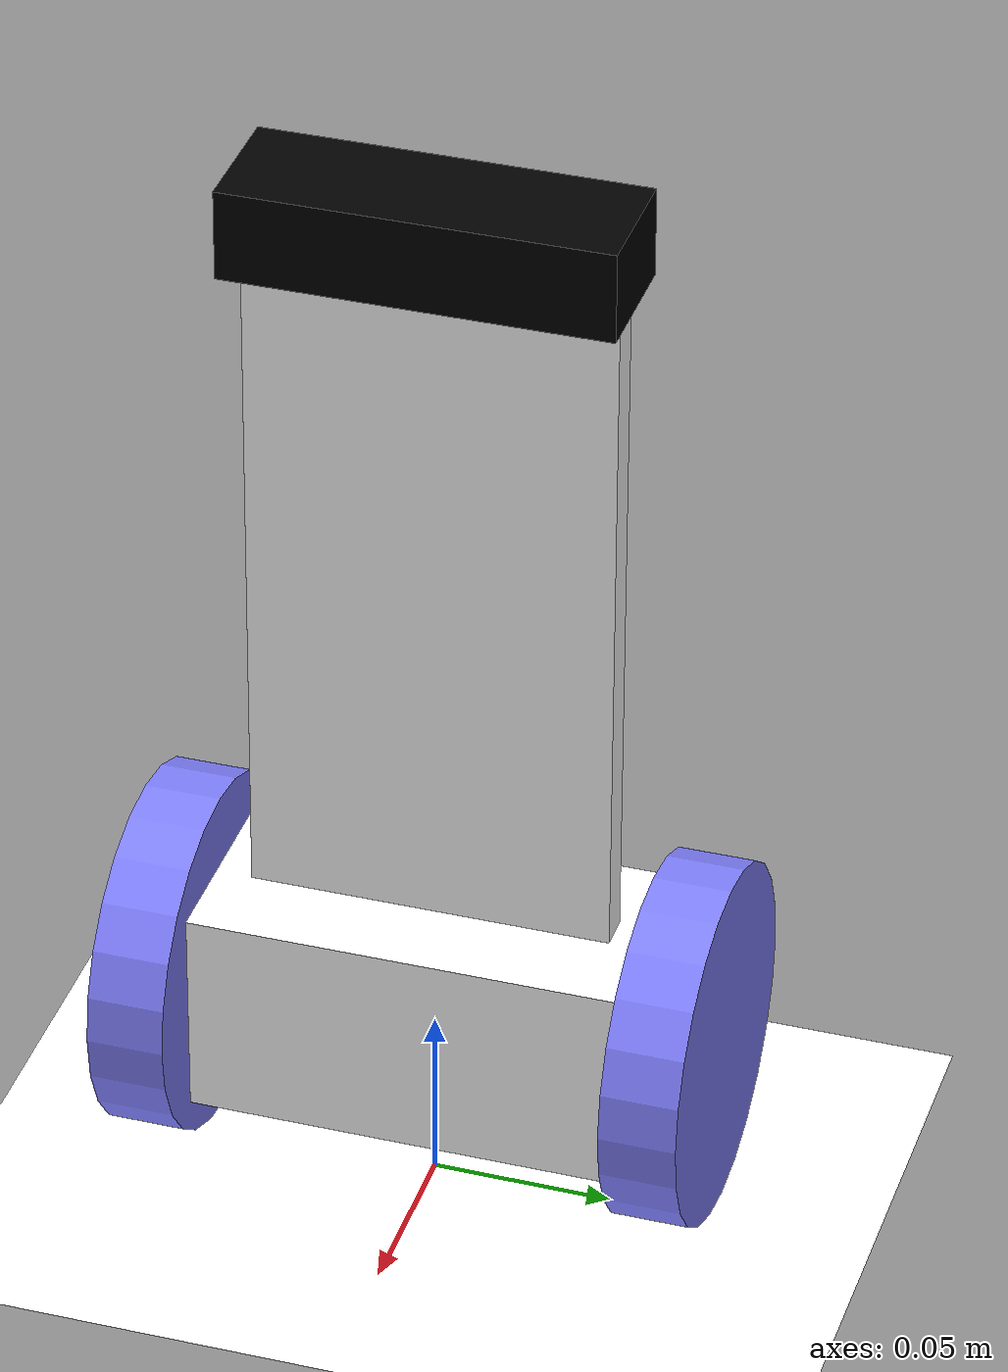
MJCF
<mujoco model="balancing car">
  <compiler autolimits="true" />
  <option timestep="0.002" iterations="10" ls_iterations="10" gravity="0 0 -9.81">
    <flag eulerdamp="disable" />
  </option>
  <asset>
    <texture type="2d" name="groundplane" builtin="checker" mark="edge" rgb1="1 1 1" rgb2="1 1 1"
      markrgb="0 0 0"
      width="300" height="300" />
    <material name="groundplane" texture="groundplane" texuniform="true" texrepeat="5 5"
      reflectance="0" />
    <material name="target" rgba=".6 .3 .3 1" />
    <texture type="skybox" builtin="gradient" rgb1="1 1 1" rgb2="1 1 1" width="800" height="800" />
    <texture name="wheel_tex" type="2d" builtin="checker"
      rgb1="0.2 0.2 0.2" rgb2="0.8 0.8 0.8"
      width="100" height="100" />
    <material name="wheel_mat" texture="wheel_tex" texrepeat="4 1" />
  </asset>
  <visual>
    <headlight diffuse="0.6 0.6 0.6" ambient="0.3 0.3 0.3" specular="0 0 0" />
    <rgba haze="0.15 0.25 0.35 1" />
    <global azimuth="160" elevation="-20" />
  </visual>

  <default>
    <joint damping=".03" actuatorfrcrange="-5 5" />
    <default class="wheel">
      <geom type="cylinder" size=".05 .0106" rgba=".5 .5 1 1" material="wheel_mat" mass="0.03"
        friction="0.7 0.01 0.004" />
    </default>
  </default>
  <sensor>
    <gyro site="imu" name="gyro" />
    <velocimeter site="imu" name="local_linvel" />
    <accelerometer site="imu" name="accelerometer" />
  </sensor>
  <worldbody>
    <camera name="fixed" pos="0 0 3.0" quat="1 0 0 0" />
    <camera name="cam0" pos="0 -4 3.2" xyaxes="1 0 0 0 1 2" />
    <camera name="default" pos="1.108 -2.362 1.529" xyaxes="0.905 0.425 -0.000 -0.215 0.458 0.863" />

    <geom name="floor" size="0 0 0.01" type="plane" material="groundplane" contype="1"
      conaffinity="0"
      priority="1" friction="0.9" condim="3" />
    <body name="car" pos="0 0 .06">
      <freejoint />
      <geom name="wheelbox" type="box" size=".03 .06 .03" mass="0.6" rgba="1 1 1 1" />
      <site name="imu" pos="0.0 0.0 .11" rgba="1 0 0 1" />
      <body name="left wheel" pos="0.0 .071 0.0" zaxis="0 1 0">
        <joint name="left" />
        <geom class="wheel" />
      </body>
      <body name="right wheel" pos="0.0 -.071 0.0" zaxis="0 1 0">
        <joint name="right" />
        <geom class="wheel" />
      </body>
      <body name="electronics" pos="0.0 0.0 0.13">
        <geom name="electronicsbox" type="box" size="0.005 0.05 0.1" mass="0.2" rgba="1 1 1 1" />
      </body>
      <body name="battery" pos="0.0 0.0 0.235">
        <geom name="batterybox" type="box" size="0.0175 0.0525 0.0125" mass="0.17" rgba="0 0 0 1" />
      </body>
    </body>
  </worldbody>

  <tendon>
    <fixed name="drive">
      <joint joint="left" coef=".5" />
      <joint joint="right" coef=".5" />
    </fixed>
  </tendon>

  <actuator>
    <velocity name="motor" tendon="drive" ctrlrange="-20 20" kv=".4" forcerange="-0.46 0.46" />
  </actuator>
</mujoco>
